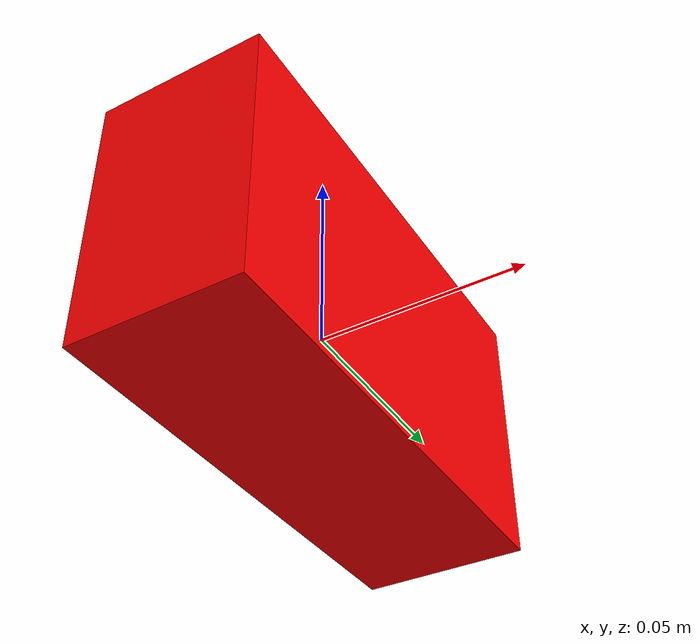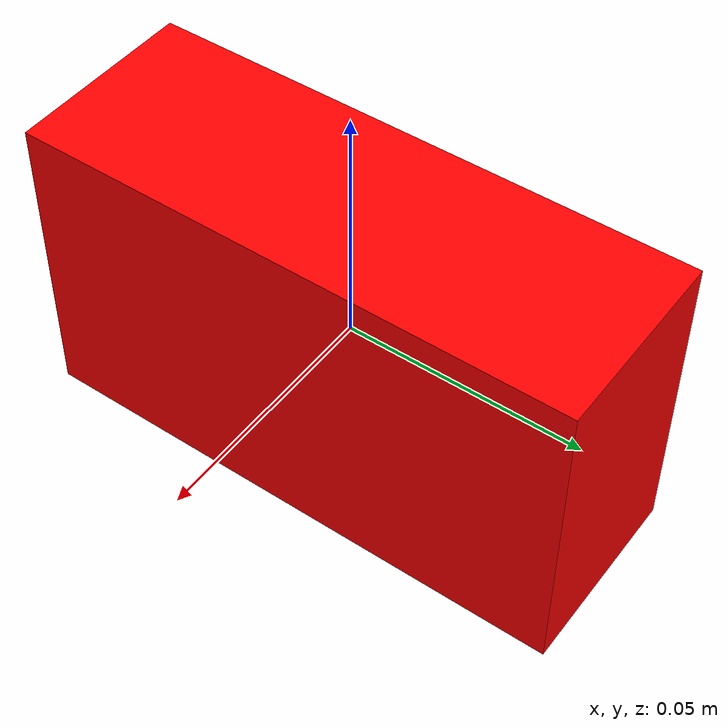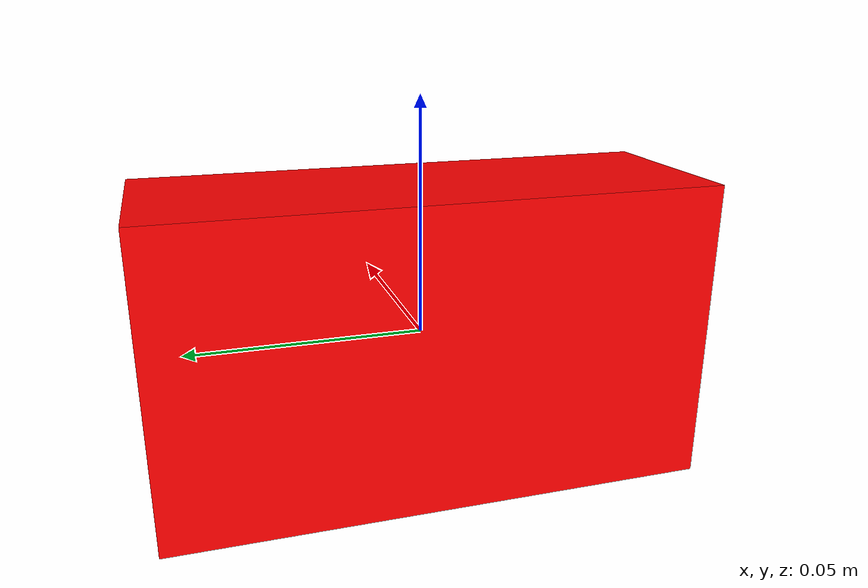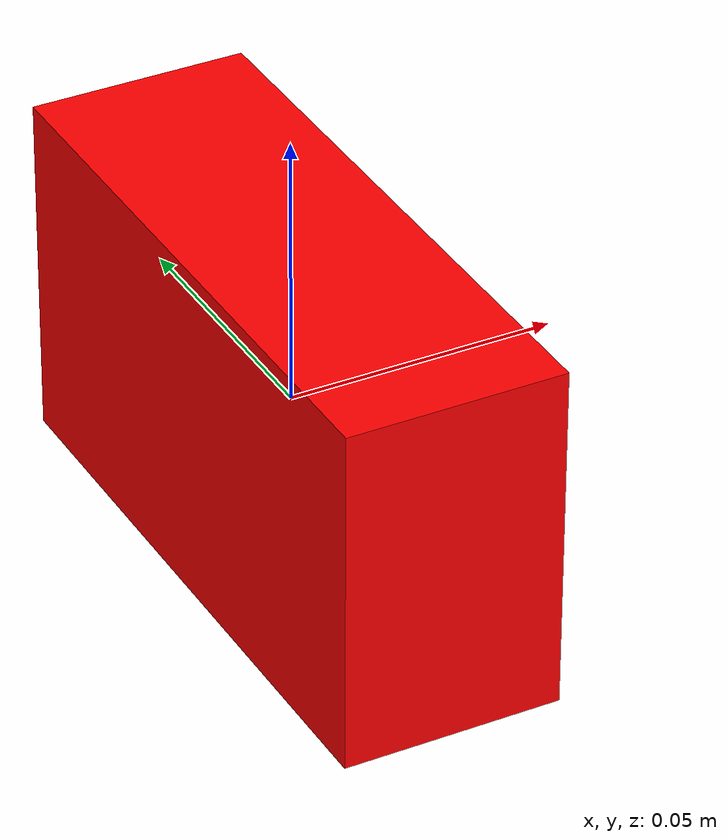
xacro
<?xml version="1.0" encoding="utf-8" ?>
<robot name = "camera" xmlns:xacro="http://ros.org/wiki/xacro">

  <material name="red">
    <color rgba="1.0 0.0 0.0 1.0"/>
  </material>

  <!--ONLY dimensions, weight, and inertia match the values of a orbbec femto bolt camera. Sensor specs are custom-->
  <link name="camera_link">
    <visual>
      <geometry>
        <box size="0.04026 0.1153 0.06495"/>
      </geometry>
      <material name="red"/>
    </visual>
    <collision>
      <geometry>
        <box size="0.04026 0.1153 0.06495"/>
      </geometry>
    </collision>
    <inertial>
      <mass value="0.348"/>
      <origin xyz="0.0 0.0 0.0" rpy="0.0 0.0 0.0"/>
      <inertia ixx="5.08e-4" ixy="0.0" ixz="0.0" iyy="1.69e-4" iyz="0.0" izz="4.33e-4"/>
    </inertial>
  </link>

  <joint name = "camera_optical_joint" type = "fixed">
    <parent link = "camera_link"/>
    <child link = "camera_optical_link"/>
    <origin xyz = "0.0 0.0 0.0" rpy = "${-pi/2} 0.0 ${-pi/2}"/>
  </joint>

  <link name = "camera_optical_link"></link>

  <gazebo>
    <static>true</static>
  </gazebo>

  <gazebo reference = "camera_link">
    <material>Gazebo/Red</material>

    <sensor name="camera" type="rgbd_camera">
      <pose>0 0 0 0 0 0</pose>
      <visualize>true</visualize>
      <update_rate>10</update_rate>
      <topic>camera</topic>
      <gz_frame_id>camera_link</gz_frame_id>
      <camera>
        <horizontal_fov>1.089</horizontal_fov>
        <image>
          <format>R8G8B8</format>
          <width>640</width>
          <height>480</height>
        </image>
        <clip>
          <near>0.05</near>
          <far>8.0</far>
        </clip>
      </camera>
    </sensor>

  </gazebo>
</robot>
